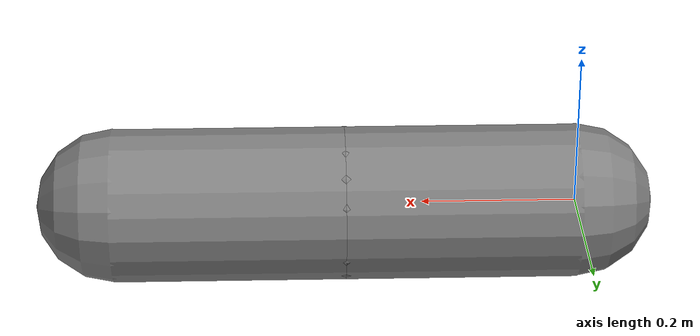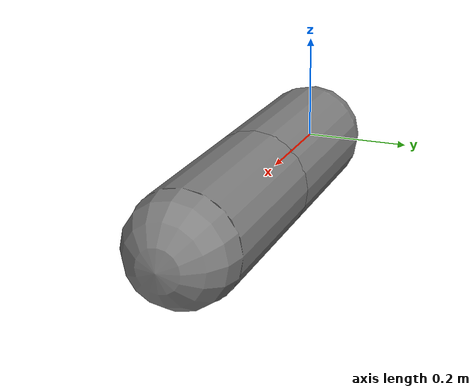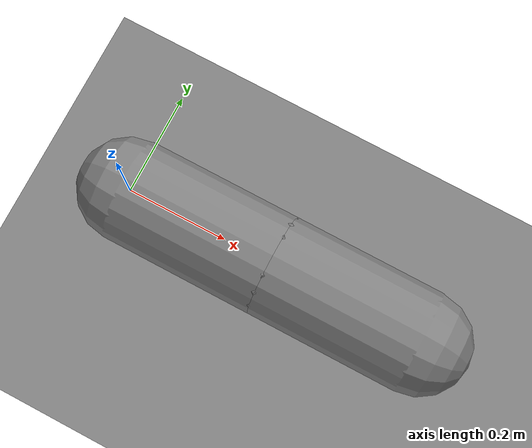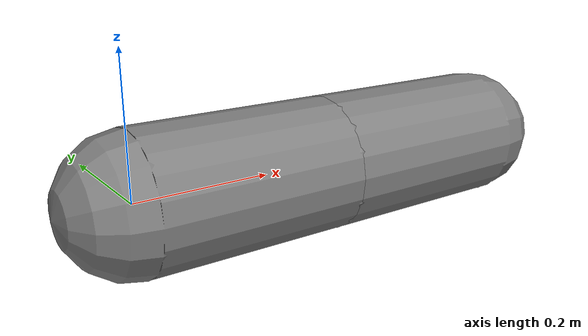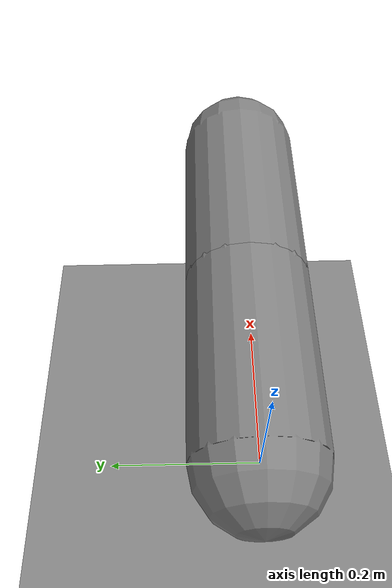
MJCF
<mujoco model="multi_constraint">
            <compiler angle="radian"/>
            <option gravity="0 0 -9.81" timestep="0.002" solver="Newton" cone="elliptic"/>
            <worldbody>
                <body name="arm1" pos="0 0 0">
                    <joint name="j1" type="hinge" limited="true" range="-1.57 1.57"
                           damping="0.5"/>
                    <geom type="capsule" size="0.1" fromto="0 0 0 0.3 0 0" mass="5.0"/>
                    <body name="arm2" pos="0.3 0 0">
                        <joint name="j2" type="hinge" limited="true" range="-1.57 1.57"
                               damping="0.5"/>
                        <geom type="capsule" size="0.1" fromto="0 0 0 0.3 0 0" mass="3.0"/>
                    </body>
                </body>
                <geom type="plane" size="5 5 0.1" pos="0 0 -1"/>
            </worldbody>
        </mujoco>
